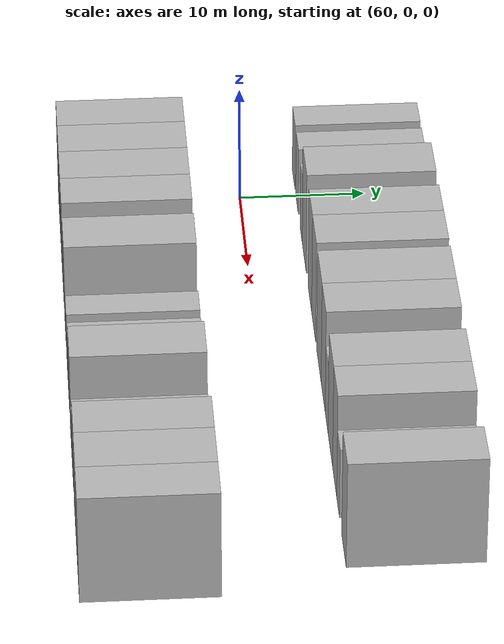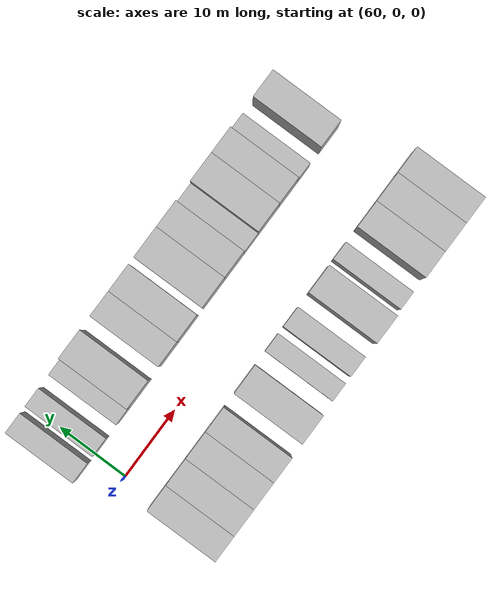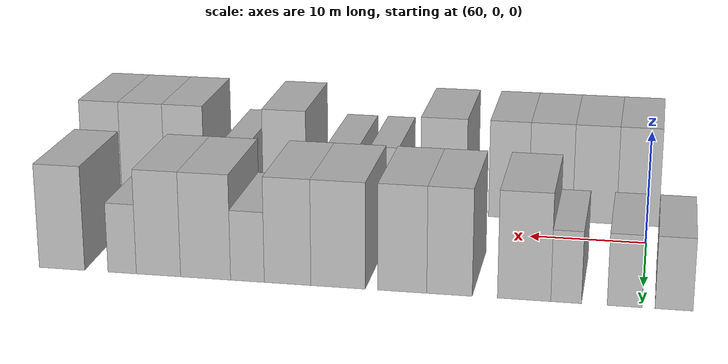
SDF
<sdf version="1.6">
 <world name="default">
  <model name="building_12">
   <static>1</static>
   <pose>57.5705 9.5000 0 0.000000 0.000000 1.570796</pose>
   <link name="link">
    <pose>0 0 3.00 0 0 0</pose>
    <collision name="collision"><geometry><box><size>10.0000 2.9192 6.0000</size></box></geometry></collision>
    <visual name="visual">
     <cast_shadows>0</cast_shadows>
     <geometry><box><size>10.0000 2.9192 6.0000</size></box></geometry>
     <material>
      <script>
       <uri>model://HANNAS_wall/materials/scripts</uri>
       <uri>model://HANNAS_wall/materials/textures</uri>
       <name>vrc/HANNAS_wall</name>
      </script>
     </material>
    </visual>
   </link>
  </model>
  <model name="building_13">
   <static>1</static>
   <pose>61.3767 9.5000 0 0.000000 0.000000 1.570796</pose>
   <link name="link">
    <pose>0 0 3.00 0 0 0</pose>
    <collision name="collision"><geometry><box><size>10.0000 2.6934 6.0000</size></box></geometry></collision>
    <visual name="visual">
     <cast_shadows>0</cast_shadows>
     <geometry><box><size>10.0000 2.6934 6.0000</size></box></geometry>
     <material>
      <script>
       <uri>model://HANNAS_wall/materials/scripts</uri>
       <uri>model://HANNAS_wall/materials/textures</uri>
       <name>vrc/HANNAS_wall</name>
      </script>
     </material>
    </visual>
   </link>
  </model>
  <model name="building_14">
   <static>1</static>
   <pose>65.9254 9.5000 0 0.000000 0.000000 1.570796</pose>
   <link name="link">
    <pose>0 0 3.00 0 0 0</pose>
    <collision name="collision"><geometry><box><size>10.0000 2.4040 6.0000</size></box></geometry></collision>
    <visual name="visual">
     <cast_shadows>0</cast_shadows>
     <geometry><box><size>10.0000 2.4040 6.0000</size></box></geometry>
     <material>
      <script>
       <uri>model://HANNAS_wall/materials/scripts</uri>
       <uri>model://HANNAS_wall/materials/textures</uri>
       <name>vrc/HANNAS_wall</name>
      </script>
     </material>
    </visual>
   </link>
  </model>
  <model name="building_15">
   <static>1</static>
   <pose>69.2323 9.5000 0 0.000000 0.000000 1.570796</pose>
   <link name="link">
    <pose>0 0 4.50 0 0 0</pose>
    <collision name="collision"><geometry><box><size>10.0000 4.2098 9.0000</size></box></geometry></collision>
    <visual name="visual">
     <cast_shadows>0</cast_shadows>
     <geometry><box><size>10.0000 4.2098 9.0000</size></box></geometry>
     <material>
      <script>
       <uri>model://HANNAS_wall/materials/scripts</uri>
       <uri>model://HANNAS_wall/materials/textures</uri>
       <name>vrc/HANNAS_wall</name>
      </script>
     </material>
    </visual>
   </link>
  </model>
  <model name="building_16">
   <static>1</static>
   <pose>75.1610 9.5000 0 0.000000 0.000000 1.570796</pose>
   <link name="link">
    <pose>0 0 4.50 0 0 0</pose>
    <collision name="collision"><geometry><box><size>10.0000 3.6475 9.0000</size></box></geometry></collision>
    <visual name="visual">
     <cast_shadows>0</cast_shadows>
     <geometry><box><size>10.0000 3.6475 9.0000</size></box></geometry>
     <material>
      <script>
       <uri>model://HANNAS_wall/materials/scripts</uri>
       <uri>model://HANNAS_wall/materials/textures</uri>
       <name>vrc/HANNAS_wall</name>
      </script>
     </material>
    </visual>
   </link>
  </model>
  <model name="building_17">
   <static>1</static>
   <pose>78.9682 9.5000 0 0.000000 0.000000 1.570796</pose>
   <link name="link">
    <pose>0 0 4.50 0 0 0</pose>
    <collision name="collision"><geometry><box><size>10.0000 3.9669 9.0000</size></box></geometry></collision>
    <visual name="visual">
     <cast_shadows>0</cast_shadows>
     <geometry><box><size>10.0000 3.9669 9.0000</size></box></geometry>
     <material>
      <script>
       <uri>model://HANNAS_wall/materials/scripts</uri>
       <uri>model://HANNAS_wall/materials/textures</uri>
       <name>vrc/HANNAS_wall</name>
      </script>
     </material>
    </visual>
   </link>
  </model>
  <model name="building_18">
   <static>1</static>
   <pose>84.1796 9.5000 0 0.000000 0.000000 1.570796</pose>
   <link name="link">
    <pose>0 0 4.50 0 0 0</pose>
    <collision name="collision"><geometry><box><size>10.0000 4.4560 9.0000</size></box></geometry></collision>
    <visual name="visual">
     <cast_shadows>0</cast_shadows>
     <geometry><box><size>10.0000 4.4560 9.0000</size></box></geometry>
     <material>
      <script>
       <uri>model://HANNAS_wall/materials/scripts</uri>
       <uri>model://HANNAS_wall/materials/textures</uri>
       <name>vrc/HANNAS_wall</name>
      </script>
     </material>
    </visual>
   </link>
  </model>
  <model name="building_19">
   <static>1</static>
   <pose>88.3378 9.5000 0 0.000000 0.000000 1.570796</pose>
   <link name="link">
    <pose>0 0 4.50 0 0 0</pose>
    <collision name="collision"><geometry><box><size>10.0000 3.8603 9.0000</size></box></geometry></collision>
    <visual name="visual">
     <cast_shadows>0</cast_shadows>
     <geometry><box><size>10.0000 3.8603 9.0000</size></box></geometry>
     <material>
      <script>
       <uri>model://HANNAS_wall/materials/scripts</uri>
       <uri>model://HANNAS_wall/materials/textures</uri>
       <name>vrc/HANNAS_wall</name>
      </script>
     </material>
    </visual>
   </link>
  </model>
  <model name="building_20">
   <static>1</static>
   <pose>91.6720 9.5000 0 0.000000 0.000000 1.570796</pose>
   <link name="link">
    <pose>0 0 3.00 0 0 0</pose>
    <collision name="collision"><geometry><box><size>10.0000 2.8080 6.0000</size></box></geometry></collision>
    <visual name="visual">
     <cast_shadows>0</cast_shadows>
     <geometry><box><size>10.0000 2.8080 6.0000</size></box></geometry>
     <material>
      <script>
       <uri>model://HANNAS_wall/materials/scripts</uri>
       <uri>model://HANNAS_wall/materials/textures</uri>
       <name>vrc/HANNAS_wall</name>
      </script>
     </material>
    </visual>
   </link>
  </model>
  <model name="building_21">
   <static>1</static>
   <pose>95.1774 9.5000 0 0.000000 0.000000 1.570796</pose>
   <link name="link">
    <pose>0 0 4.50 0 0 0</pose>
    <collision name="collision"><geometry><box><size>10.0000 4.2028 9.0000</size></box></geometry></collision>
    <visual name="visual">
     <cast_shadows>0</cast_shadows>
     <geometry><box><size>10.0000 4.2028 9.0000</size></box></geometry>
     <material>
      <script>
       <uri>model://HANNAS_wall/materials/scripts</uri>
       <uri>model://HANNAS_wall/materials/textures</uri>
       <name>vrc/HANNAS_wall</name>
      </script>
     </material>
    </visual>
   </link>
  </model>
  <model name="building_22">
   <static>1</static>
   <pose>99.1581 9.5000 0 0.000000 0.000000 1.570796</pose>
   <link name="link">
    <pose>0 0 4.50 0 0 0</pose>
    <collision name="collision"><geometry><box><size>10.0000 3.7587 9.0000</size></box></geometry></collision>
    <visual name="visual">
     <cast_shadows>0</cast_shadows>
     <geometry><box><size>10.0000 3.7587 9.0000</size></box></geometry>
     <material>
      <script>
       <uri>model://HANNAS_wall/materials/scripts</uri>
       <uri>model://HANNAS_wall/materials/textures</uri>
       <name>vrc/HANNAS_wall</name>
      </script>
     </material>
    </visual>
   </link>
  </model>
  <model name="building_23">
   <static>1</static>
   <pose>102.2509 9.5000 0 0.000000 0.000000 1.570796</pose>
   <link name="link">
    <pose>0 0 3.00 0 0 0</pose>
    <collision name="collision"><geometry><box><size>10.0000 2.4268 6.0000</size></box></geometry></collision>
    <visual name="visual">
     <cast_shadows>0</cast_shadows>
     <geometry><box><size>10.0000 2.4268 6.0000</size></box></geometry>
     <material>
      <script>
       <uri>model://HANNAS_wall/materials/scripts</uri>
       <uri>model://HANNAS_wall/materials/textures</uri>
       <name>vrc/HANNAS_wall</name>
      </script>
     </material>
    </visual>
   </link>
  </model>
  <model name="building_24">
   <static>1</static>
   <pose>107.4302 9.5000 0 0.000000 0.000000 1.570796</pose>
   <link name="link">
    <pose>0 0 4.50 0 0 0</pose>
    <collision name="collision"><geometry><box><size>10.0000 3.9319 9.0000</size></box></geometry></collision>
    <visual name="visual">
     <cast_shadows>0</cast_shadows>
     <geometry><box><size>10.0000 3.9319 9.0000</size></box></geometry>
     <material>
      <script>
       <uri>model://HANNAS_wall/materials/scripts</uri>
       <uri>model://HANNAS_wall/materials/textures</uri>
       <name>vrc/HANNAS_wall</name>
      </script>
     </material>
    </visual>
   </link>
  </model>
  <model name="building_62">
   <static>1</static>
   <pose>60.8553 -9.5000 0 0.000000 0.000000 1.570796</pose>
   <link name="link">
    <pose>0 0 4.50 0 0 0</pose>
    <collision name="collision"><geometry><box><size>10.0000 3.7076 9.0000</size></box></geometry></collision>
    <visual name="visual">
     <cast_shadows>0</cast_shadows>
     <geometry><box><size>10.0000 3.7076 9.0000</size></box></geometry>
     <material>
      <script>
       <uri>model://HANNAS_wall/materials/scripts</uri>
       <uri>model://HANNAS_wall/materials/textures</uri>
       <name>vrc/HANNAS_wall</name>
      </script>
     </material>
    </visual>
   </link>
  </model>
  <model name="building_63">
   <static>1</static>
   <pose>64.6545 -9.5000 0 0.000000 0.000000 1.570796</pose>
   <link name="link">
    <pose>0 0 4.50 0 0 0</pose>
    <collision name="collision"><geometry><box><size>10.0000 3.8907 9.0000</size></box></geometry></collision>
    <visual name="visual">
     <cast_shadows>0</cast_shadows>
     <geometry><box><size>10.0000 3.8907 9.0000</size></box></geometry>
     <material>
      <script>
       <uri>model://HANNAS_wall/materials/scripts</uri>
       <uri>model://HANNAS_wall/materials/textures</uri>
       <name>vrc/HANNAS_wall</name>
      </script>
     </material>
    </visual>
   </link>
  </model>
  <model name="building_64">
   <static>1</static>
   <pose>68.5563 -9.5000 0 0.000000 0.000000 1.570796</pose>
   <link name="link">
    <pose>0 0 4.50 0 0 0</pose>
    <collision name="collision"><geometry><box><size>10.0000 3.9128 9.0000</size></box></geometry></collision>
    <visual name="visual">
     <cast_shadows>0</cast_shadows>
     <geometry><box><size>10.0000 3.9128 9.0000</size></box></geometry>
     <material>
      <script>
       <uri>model://HANNAS_wall/materials/scripts</uri>
       <uri>model://HANNAS_wall/materials/textures</uri>
       <name>vrc/HANNAS_wall</name>
      </script>
     </material>
    </visual>
   </link>
  </model>
  <model name="building_65">
   <static>1</static>
   <pose>72.3182 -9.5000 0 0.000000 0.000000 1.570796</pose>
   <link name="link">
    <pose>0 0 4.50 0 0 0</pose>
    <collision name="collision"><geometry><box><size>10.0000 3.6110 9.0000</size></box></geometry></collision>
    <visual name="visual">
     <cast_shadows>0</cast_shadows>
     <geometry><box><size>10.0000 3.6110 9.0000</size></box></geometry>
     <material>
      <script>
       <uri>model://HANNAS_wall/materials/scripts</uri>
       <uri>model://HANNAS_wall/materials/textures</uri>
       <name>vrc/HANNAS_wall</name>
      </script>
     </material>
    </visual>
   </link>
  </model>
  <model name="building_66">
   <static>1</static>
   <pose>78.2149 -9.5000 0 0.000000 0.000000 1.570796</pose>
   <link name="link">
    <pose>0 0 4.50 0 0 0</pose>
    <collision name="collision"><geometry><box><size>10.0000 4.1823 9.0000</size></box></geometry></collision>
    <visual name="visual">
     <cast_shadows>0</cast_shadows>
     <geometry><box><size>10.0000 4.1823 9.0000</size></box></geometry>
     <material>
      <script>
       <uri>model://HANNAS_wall/materials/scripts</uri>
       <uri>model://HANNAS_wall/materials/textures</uri>
       <name>vrc/HANNAS_wall</name>
      </script>
     </material>
    </visual>
   </link>
  </model>
  <model name="building_67">
   <static>1</static>
   <pose>83.6147 -9.5000 0 0.000000 0.000000 1.570796</pose>
   <link name="link">
    <pose>0 0 3.00 0 0 0</pose>
    <collision name="collision"><geometry><box><size>10.0000 2.6173 6.0000</size></box></geometry></collision>
    <visual name="visual">
     <cast_shadows>0</cast_shadows>
     <geometry><box><size>10.0000 2.6173 6.0000</size></box></geometry>
     <material>
      <script>
       <uri>model://HANNAS_wall/materials/scripts</uri>
       <uri>model://HANNAS_wall/materials/textures</uri>
       <name>vrc/HANNAS_wall</name>
      </script>
     </material>
    </visual>
   </link>
  </model>
  <model name="building_68">
   <static>1</static>
   <pose>87.3883 -9.5000 0 0.000000 0.000000 1.570796</pose>
   <link name="link">
    <pose>0 0 3.00 0 0 0</pose>
    <collision name="collision"><geometry><box><size>10.0000 2.9300 6.0000</size></box></geometry></collision>
    <visual name="visual">
     <cast_shadows>0</cast_shadows>
     <geometry><box><size>10.0000 2.9300 6.0000</size></box></geometry>
     <material>
      <script>
       <uri>model://HANNAS_wall/materials/scripts</uri>
       <uri>model://HANNAS_wall/materials/textures</uri>
       <name>vrc/HANNAS_wall</name>
      </script>
     </material>
    </visual>
   </link>
  </model>
  <model name="building_69">
   <static>1</static>
   <pose>92.8749 -9.5000 0 0.000000 0.000000 1.570796</pose>
   <link name="link">
    <pose>0 0 4.50 0 0 0</pose>
    <collision name="collision"><geometry><box><size>10.0000 4.0431 9.0000</size></box></geometry></collision>
    <visual name="visual">
     <cast_shadows>0</cast_shadows>
     <geometry><box><size>10.0000 4.0431 9.0000</size></box></geometry>
     <material>
      <script>
       <uri>model://HANNAS_wall/materials/scripts</uri>
       <uri>model://HANNAS_wall/materials/textures</uri>
       <name>vrc/HANNAS_wall</name>
      </script>
     </material>
    </visual>
   </link>
  </model>
  <model name="building_70">
   <static>1</static>
   <pose>97.1820 -9.5000 0 0.000000 0.000000 1.570796</pose>
   <link name="link">
    <pose>0 0 3.00 0 0 0</pose>
    <collision name="collision"><geometry><box><size>10.0000 2.5712 6.0000</size></box></geometry></collision>
    <visual name="visual">
     <cast_shadows>0</cast_shadows>
     <geometry><box><size>10.0000 2.5712 6.0000</size></box></geometry>
     <material>
      <script>
       <uri>model://HANNAS_wall/materials/scripts</uri>
       <uri>model://HANNAS_wall/materials/textures</uri>
       <name>vrc/HANNAS_wall</name>
      </script>
     </material>
    </visual>
   </link>
  </model>
  <model name="building_71">
   <static>1</static>
   <pose>102.3761 -9.5000 0 0.000000 0.000000 1.570796</pose>
   <link name="link">
    <pose>0 0 4.50 0 0 0</pose>
    <collision name="collision"><geometry><box><size>10.0000 3.8168 9.0000</size></box></geometry></collision>
    <visual name="visual">
     <cast_shadows>0</cast_shadows>
     <geometry><box><size>10.0000 3.8168 9.0000</size></box></geometry>
     <material>
      <script>
       <uri>model://HANNAS_wall/materials/scripts</uri>
       <uri>model://HANNAS_wall/materials/textures</uri>
       <name>vrc/HANNAS_wall</name>
      </script>
     </material>
    </visual>
   </link>
  </model>
  <model name="building_72">
   <static>1</static>
   <pose>106.3669 -9.5000 0 0.000000 0.000000 1.570796</pose>
   <link name="link">
    <pose>0 0 4.50 0 0 0</pose>
    <collision name="collision"><geometry><box><size>10.0000 4.1648 9.0000</size></box></geometry></collision>
    <visual name="visual">
     <cast_shadows>0</cast_shadows>
     <geometry><box><size>10.0000 4.1648 9.0000</size></box></geometry>
     <material>
      <script>
       <uri>model://HANNAS_wall/materials/scripts</uri>
       <uri>model://HANNAS_wall/materials/textures</uri>
       <name>vrc/HANNAS_wall</name>
      </script>
     </material>
    </visual>
   </link>
  </model>
  <model name="building_73">
   <static>1</static>
   <pose>110.3328 -9.5000 0 0.000000 0.000000 1.570796</pose>
   <link name="link">
    <pose>0 0 4.50 0 0 0</pose>
    <collision name="collision"><geometry><box><size>10.0000 3.7671 9.0000</size></box></geometry></collision>
    <visual name="visual">
     <cast_shadows>0</cast_shadows>
     <geometry><box><size>10.0000 3.7671 9.0000</size></box></geometry>
     <material>
      <script>
       <uri>model://HANNAS_wall/materials/scripts</uri>
       <uri>model://HANNAS_wall/materials/textures</uri>
       <name>vrc/HANNAS_wall</name>
      </script>
     </material>
    </visual>
   </link>
  </model>
 </world>
</sdf>
